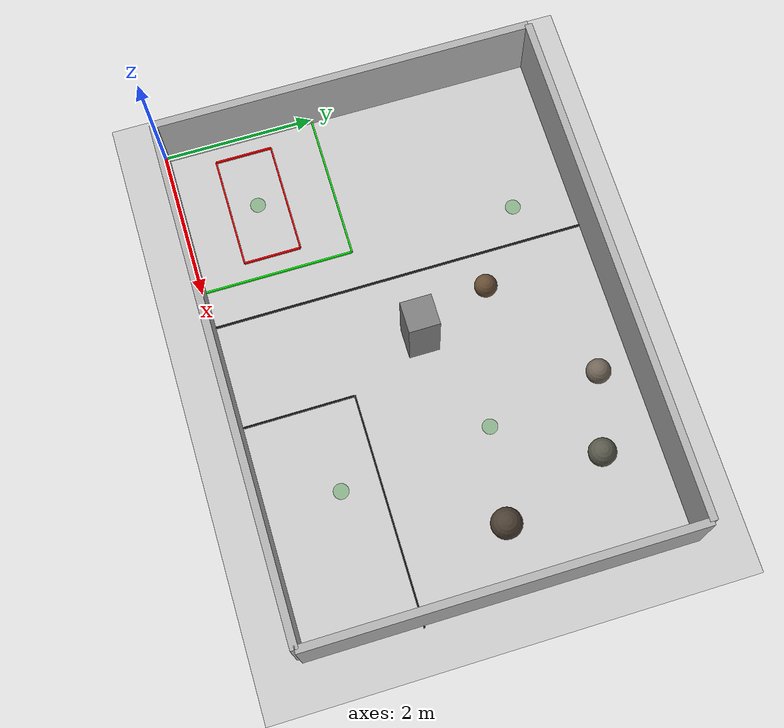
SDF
<sdf version="1.6">
  <world name="usc_arena">
    <physics name="10ms" type="ignored">
      <max_step_size>0.01</max_step_size>
      <real_time_factor>1.0</real_time_factor>
      <real_time_update_rate>50</real_time_update_rate>
    </physics>
    <plugin
      filename="gz-sim-physics-system"
      name="gz::sim::systems::Physics">
    </plugin>
    <plugin
      filename="gz-sim-user-commands-system"
      name="gz::sim::systems::UserCommands">
    </plugin>
    <plugin
      filename="gz-sim-scene-broadcaster-system"
      name="gz::sim::systems::SceneBroadcaster">
    </plugin>
    <plugin
      filename="gz-sim-sensors-system"
      name="gz::sim::systems::Sensors">
      <render_engine>ogre2</render_engine>
    </plugin>
    <plugin
      filename='gz-sim-imu-system'
      name='gz::sim::systems::Imu'>
    </plugin>
    <plugin
      filename="gz-sim-contact-system"
      name="gz::sim::systems::Contact">
    </plugin>

    <light type="directional" name="sun">
      <cast_shadows>true</cast_shadows>
      <pose>0 0 10 0 0 0</pose>
      <diffuse>0.8 0.8 0.8 1</diffuse>
      <specular>0.2 0.2 0.2 1</specular>
      <attenuation>
        <range>1000</range>
        <constant>0.9</constant>
        <linear>0.01</linear>
        <quadratic>0.001</quadratic>
      </attenuation>
      <direction>-0.5 0.1 -0.9</direction>
    </light>

    <!-- Ground plane -->
    <model name="ground_plane">
      <static>true</static>
      <link name="link">
        <collision name="collision">
          <geometry>
            <plane>
              <normal>0 0 1</normal>
              <size>20 20</size>
            </plane>
          </geometry>
        </collision>
        <visual name="visual">
          <geometry>
            <plane>
              <normal>0 0 1</normal>
              <size>20 20</size>
            </plane>
          </geometry>
          <material>
            <ambient>0.8 0.8 0.8 1</ambient>
            <diffuse>0.8 0.8 0.8 1</diffuse>
            <specular>0.8 0.8 0.8 1</specular>
          </material>
        </visual>
      </link>
    </model>

    <!-- Arena walls: 6.8m x 5m rectangle with SW corner at origin -->
    <!-- North wall -->
    <model name="north_wall">
      <static>true</static>
      <pose>3.4 5.0 0.5 0 0 0</pose>
      <link name="link">
        <collision name="collision">
          <geometry>
            <box>
              <size>6.8 0.1 1.0</size>
            </box>
          </geometry>
        </collision>
        <visual name="visual">
          <geometry>
            <box>
              <size>6.8 0.1 1.0</size>
            </box>
          </geometry>
          <material>
            <ambient>0.7 0.7 0.7 1</ambient>
            <diffuse>0.7 0.7 0.7 1</diffuse>
          </material>
        </visual>
      </link>
    </model>

    <!-- South wall -->
    <model name="south_wall">
      <static>true</static>
      <pose>3.4 0 0.5 0 0 0</pose>
      <link name="link">
        <collision name="collision">
          <geometry>
            <box>
              <size>6.8 0.1 1.0</size>
            </box>
          </geometry>
        </collision>
        <visual name="visual">
          <geometry>
            <box>
              <size>6.8 0.1 1.0</size>
            </box>
          </geometry>
          <material>
            <ambient>0.7 0.7 0.7 1</ambient>
            <diffuse>0.7 0.7 0.7 1</diffuse>
          </material>
        </visual>
      </link>
    </model>

    <!-- East wall -->
    <model name="east_wall">
      <static>true</static>
      <pose>6.8 2.5 0.5 0 0 0</pose>
      <link name="link">
        <collision name="collision">
          <geometry>
            <box>
              <size>0.1 5.0 1.0</size>
            </box>
          </geometry>
        </collision>
        <visual name="visual">
          <geometry>
            <box>
              <size>0.1 5.0 1.0</size>
            </box>
          </geometry>
          <material>
            <ambient>0.7 0.7 0.7 1</ambient>
            <diffuse>0.7 0.7 0.7 1</diffuse>
          </material>
        </visual>
      </link>
    </model>

    <!-- West wall -->
    <model name="west_wall">
      <static>true</static>
      <pose>0 2.5 0.5 0 0 0</pose>
      <link name="link">
        <collision name="collision">
          <geometry>
            <box>
              <size>0.1 5.0 1.0</size>
            </box>
          </geometry>
        </collision>
        <visual name="visual">
          <geometry>
            <box>
              <size>0.1 5.0 1.0</size>
            </box>
          </geometry>
          <material>
            <ambient>0.7 0.7 0.7 1</ambient>
            <diffuse>0.7 0.7 0.7 1</diffuse>
          </material>
        </visual>
      </link>
    </model>

    <!-- Zone Boundary Visual Markings -->
    <!-- Starting Zone boundary (green L-shape) -->
    <!-- Horizontal segment: (0, 2) to (2, 2) -->
    <model name="starting_zone_horizontal">
      <static>true</static>
      <pose>1.0 2.0 0.002 0 0 0</pose>
      <link name="link">
        <visual name="visual">
          <geometry>
            <box>
              <size>2.0 0.02 0.05</size>
            </box>
          </geometry>
          <material>
            <ambient>0 1 0 1</ambient>
            <diffuse>0 1 0 1</diffuse>
            <emissive>0 0.2 0 1</emissive>
          </material>
        </visual>
      </link>
    </model>

    <!-- Vertical segment: (2, 2) to (2, 0) -->
    <model name="starting_zone_vertical">
      <static>true</static>
      <pose>2.0 1.0 0.002 0 0 0</pose>
      <link name="link">
        <visual name="visual">
          <geometry>
            <box>
              <size>0.02 2.0 0.05</size>
            </box>
          </geometry>
          <material>
            <ambient>0 1 0 1</ambient>
            <diffuse>0 1 0 1</diffuse>
            <emissive>0 0.2 0 1</emissive>
          </material>
        </visual>
      </link>
    </model>

    <!-- Excavation/Obstacle zone separator (black vertical line) -->
    <!-- From (2.5, 0) to (2.5, 5) -->
    <model name="excavation_obstacle_line">
      <static>true</static>
      <pose>2.5 2.5 0.002 0 0 0</pose>
      <link name="link">
        <visual name="visual">
          <geometry>
            <box>
              <size>0.02 5.0 0.05</size>
            </box>
          </geometry>
          <material>
            <ambient>0 0 0 1</ambient>
            <diffuse>0 0 0 1</diffuse>
            <emissive>0.1 0.1 0.1 1</emissive>
          </material>
        </visual>
      </link>
    </model>

    <!-- Construction zone boundary (black L-shape) -->
    <!-- Vertical segment: (3.88, 0) to (3.88, 1.5) -->
    <model name="construction_zone_vertical">
      <static>true</static>
      <pose>3.88 0.75 0.002 0 0 0</pose>
      <link name="link">
        <visual name="visual">
          <geometry>
            <box>
              <size>0.02 1.5 0.05</size>
            </box>
          </geometry>
          <material>
            <ambient>0 0 0 1</ambient>
            <diffuse>0 0 0 1</diffuse>
            <emissive>0.1 0.1 0.1 1</emissive>
          </material>
        </visual>
      </link>
    </model>

    <!-- Horizontal segment: (3.88, 1.5) to (6.88, 1.5) -->
    <model name="construction_zone_horizontal">
      <static>true</static>
      <pose>5.38 1.5 0.002 0 0 0</pose>
      <link name="link">
        <visual name="visual">
          <geometry>
            <box>
              <size>3.0 0.02 0.05</size>
            </box>
          </geometry>
          <material>
            <ambient>0 0 0 1</ambient>
            <diffuse>0 0 0 1</diffuse>
            <emissive>0.1 0.1 0.1 1</emissive>
          </material>
        </visual>
      </link>
    </model>

    <!-- Robot Spawn Area Outline (150cm x 75cm centered at 1,1) -->
    <!-- North Line -->
    <model name="robot_outline_north">
      <static>true</static>
      <pose>1.0 1.375 0.003 0 0 0</pose>
      <link name="link">
        <visual name="visual">
          <geometry>
            <box>
              <size>1.5 0.02 0.05</size>
            </box>
          </geometry>
          <material>
            <ambient>1 0 0 1</ambient>
            <diffuse>1 0 0 1</diffuse>
            <emissive>0.3 0 0 1</emissive>
          </material>
        </visual>
      </link>
    </model>

    <!-- South Line -->
    <model name="robot_outline_south">
      <static>true</static>
      <pose>1.0 0.625 0.003 0 0 0</pose>
      <link name="link">
        <visual name="visual">
          <geometry>
            <box>
              <size>1.5 0.02 0.05</size>
            </box>
          </geometry>
          <material>
            <ambient>1 0 0 1</ambient>
            <diffuse>1 0 0 1</diffuse>
            <emissive>0.3 0 0 1</emissive>
          </material>
        </visual>
      </link>
    </model>

    <!-- East Line -->
    <model name="robot_outline_east">
      <static>true</static>
      <pose>1.75 1.0 0.003 0 0 0</pose>
      <link name="link">
        <visual name="visual">
          <geometry>
            <box>
              <size>0.02 0.75 0.05</size>
            </box>
          </geometry>
          <material>
            <ambient>1 0 0 1</ambient>
            <diffuse>1 0 0 1</diffuse>
            <emissive>0.3 0 0 1</emissive>
          </material>
        </visual>
      </link>
    </model>

    <!-- West Line -->
    <model name="robot_outline_west">
      <static>true</static>
      <pose>0.25 1.0 0.003 0 0 0</pose>
      <link name="link">
        <visual name="visual">
          <geometry>
            <box>
              <size>0.02 0.75 0.05</size>
            </box>
          </geometry>
          <material>
            <ambient>1 0 0 1</ambient>
            <diffuse>1 0 0 1</diffuse>
            <emissive>0.3 0 0 1</emissive>
          </material>
        </visual>
      </link>
    </model>

    <!-- Central Rectangular Column Obstacle -->
    <model name="central_column">
      <static>true</static>
      <pose>3.4 2.5 0.5 0 0 0</pose>
      <link name="link">
        <collision name="collision">
          <geometry>
            <box>
              <size>0.4 0.4 1.0</size>
            </box>
          </geometry>
        </collision>
        <visual name="visual">
          <geometry>
            <box>
              <size>0.4 0.4 1.0</size>
            </box>
          </geometry>
          <material>
            <ambient>0.5 0.5 0.5 1</ambient>
            <diffuse>0.5 0.5 0.5 1</diffuse>
          </material>
        </visual>
      </link>
    </model>

    <!-- Boulder Obstacles in Obstacle Zone -->
    <!-- Boulder 1: Small, low height -->
    <model name="boulder_1">
      <static>true</static>
      <pose>3.0 3.5 0.15 0 0 0</pose>
      <link name="link">
        <collision name="collision">
          <geometry>
            <sphere>
              <radius>0.15</radius>
            </sphere>
          </geometry>
        </collision>
        <visual name="visual">
          <geometry>
            <sphere>
              <radius>0.15</radius>
            </sphere>
          </geometry>
          <material>
            <ambient>0.4 0.3 0.2 1</ambient>
            <diffuse>0.4 0.3 0.2 1</diffuse>
            <specular>0.1 0.1 0.1 1</specular>
          </material>
        </visual>
        <inertial>
          <mass value="50"/>
          <inertia ixx="0.9" ixy="0" ixz="0" iyy="0.9" iyz="0" izz="0.9"/>
        </inertial>
      </link>
    </model>

    <!-- Boulder 2: Medium size, medium height -->
    <model name="boulder_2">
      <static>true</static>
      <pose>5.5 4.2 0.18 0 0 0</pose>
      <link name="link">
        <collision name="collision">
          <geometry>
            <sphere>
              <radius>0.18</radius>
            </sphere>
          </geometry>
        </collision>
        <visual name="visual">
          <geometry>
            <sphere>
              <radius>0.18</radius>
            </sphere>
          </geometry>
          <material>
            <ambient>0.35 0.35 0.3 1</ambient>
            <diffuse>0.35 0.35 0.3 1</diffuse>
            <specular>0.1 0.1 0.1 1</specular>
          </material>
        </visual>
        <inertial>
          <mass value="75"/>
          <inertia ixx="1.5" ixy="0" ixz="0" iyy="1.5" iyz="0" izz="1.5"/>
        </inertial>
      </link>
    </model>

    <!-- Boulder 3: Large, tall -->
    <model name="boulder_3">
      <static>true</static>
      <pose>6.0 2.8 0.2 0 0 0</pose>
      <link name="link">
        <collision name="collision">
          <geometry>
            <sphere>
              <radius>0.2</radius>
            </sphere>
          </geometry>
        </collision>
        <visual name="visual">
          <geometry>
            <sphere>
              <radius>0.2</radius>
            </sphere>
          </geometry>
          <material>
            <ambient>0.3 0.25 0.2 1</ambient>
            <diffuse>0.3 0.25 0.2 1</diffuse>
            <specular>0.1 0.1 0.1 1</specular>
          </material>
        </visual>
        <inertial>
          <mass value="100"/>
          <inertia ixx="2.0" ixy="0" ixz="0" iyy="2.0" iyz="0" izz="2.0"/>
        </inertial>
      </link>
    </model>

    <!-- Boulder 4: Medium-small, different position -->
    <model name="boulder_4">
      <static>true</static>
      <pose>4.5 4.5 0.16 0 0 0</pose>
      <link name="link">
        <collision name="collision">
          <geometry>
            <sphere>
              <radius>0.16</radius>
            </sphere>
          </geometry>
        </collision>
        <visual name="visual">
          <geometry>
            <sphere>
              <radius>0.16</radius>
            </sphere>
          </geometry>
          <material>
            <ambient>0.45 0.4 0.35 1</ambient>
            <diffuse>0.45 0.4 0.35 1</diffuse>
            <specular>0.1 0.1 0.1 1</specular>
          </material>
        </visual>
        <inertial>
          <mass value="60"/>
          <inertia ixx="1.2" ixy="0" ixz="0" iyy="1.2" iyz="0" izz="1.2"/>
        </inertial>
      </link>
    </model>

    <!-- Waypoint Visual Markers for arena_exploration pattern -->
    <!-- Waypoint 1: (2.0, 4.2) -->
    <model name="waypoint_1">
      <static>true</static>
      <pose>2.0 4.2 0.005 0 0 0</pose>
      <link name="link">
        <visual name="visual">
          <geometry>
            <cylinder>
              <radius>0.1</radius>
              <length>0.01</length>
            </cylinder>
          </geometry>
          <material>
            <ambient>0 0.5 0 0.3</ambient>
            <diffuse>0 0.5 0 0.3</diffuse>
            <emissive>0 0.1 0 0.3</emissive>
          </material>
        </visual>
      </link>
    </model>

    <!-- Waypoint 2: (4.75, 3.0) -->
    <model name="waypoint_2">
      <static>true</static>
      <pose>4.75 3.0 0.005 0 0 0</pose>
      <link name="link">
        <visual name="visual">
          <geometry>
            <cylinder>
              <radius>0.1</radius>
              <length>0.01</length>
            </cylinder>
          </geometry>
          <material>
            <ambient>0 0.5 0 0.3</ambient>
            <diffuse>0 0.5 0 0.3</diffuse>
            <emissive>0 0.1 0 0.3</emissive>
          </material>
        </visual>
      </link>
    </model>

    <!-- Waypoint 3: (5.0, 1.0) -->
    <model name="waypoint_3">
      <static>true</static>
      <pose>5.0 1.0 0.005 0 0 0</pose>
      <link name="link">
        <visual name="visual">
          <geometry>
            <cylinder>
              <radius>0.1</radius>
              <length>0.01</length>
            </cylinder>
          </geometry>
          <material>
            <ambient>0 0.5 0 0.3</ambient>
            <diffuse>0 0.5 0 0.3</diffuse>
            <emissive>0 0.1 0 0.3</emissive>
          </material>
        </visual>
      </link>
    </model>

    <!-- Waypoint 4: (1.0, 1.0) - Return to start -->
    <model name="waypoint_4">
      <static>true</static>
      <pose>1.0 1.0 0.005 0 0 0</pose>
      <link name="link">
        <visual name="visual">
          <geometry>
            <cylinder>
              <radius>0.1</radius>
              <length>0.01</length>
            </cylinder>
          </geometry>
          <material>
            <ambient>0 0.5 0 0.3</ambient>
            <diffuse>0 0.5 0 0.3</diffuse>
            <emissive>0 0.1 0 0.3</emissive>
          </material>
        </visual>
      </link>
    </model>

  </world>
</sdf>
